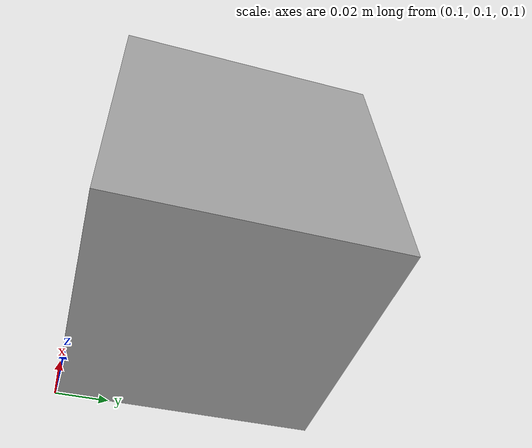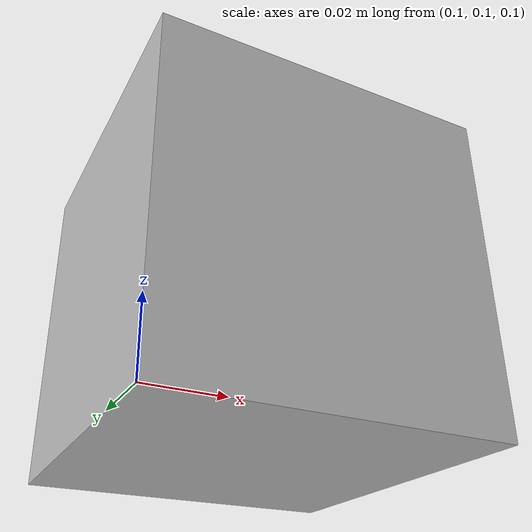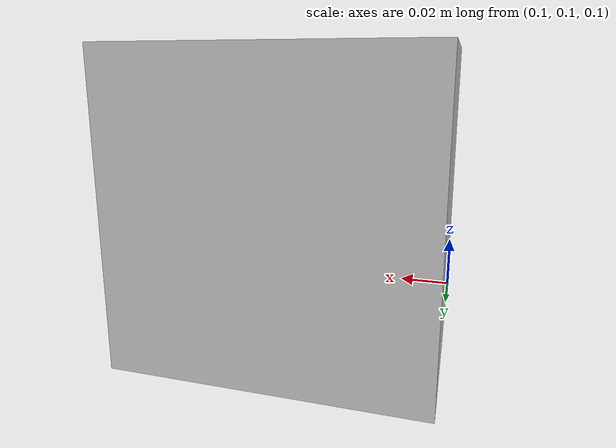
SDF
<?xml version="1.0" ?>
<sdf version="1.5">
  <model name="wideanglecamera">
    <pose>0.15 0.15 0.15 0 0 0</pose>
    <link name="link">
      <inertial>
        <mass>0.1</mass>
      </inertial>
      <collision name="collision">
        <geometry>
          <box>
            <size>0.1 0.1 0.1</size>
          </box>
        </geometry>
      </collision>
      <visual name="visual">
        <geometry>
          <box>
            <size>0.1 0.1 0.1</size>
          </box>
        </geometry>
      </visual>
      <sensor name="camera" type="wideanglecamera">
        <camera>
          <horizontal_fov>1.047</horizontal_fov>
          <image>
            <width>320</width>
            <height>240</height>
          </image>
          <clip>
            <near>0.01</near>
            <far>100</far>
          </clip>
          <lens>
            <type>gnomonical</type>
            <scale_to_hfov>true</scale_to_hfov>
            <cutoff_angle>1.5707</cutoff_angle>
            <env_texture_size>512</env_texture_size>
          </lens>
        </camera>
        <always_on>1</always_on>
        <update_rate>30</update_rate>
      </sensor>
    </link>
  </model>
</sdf>
